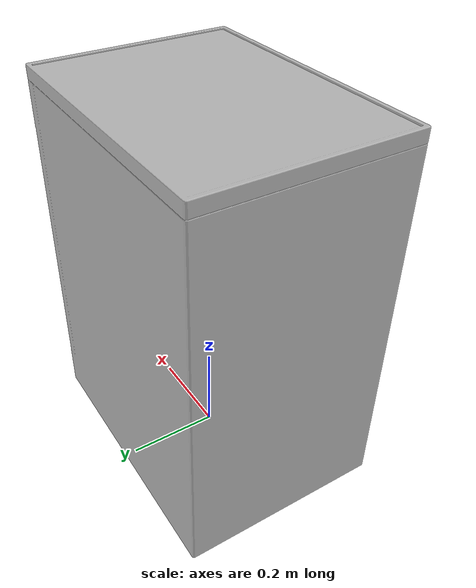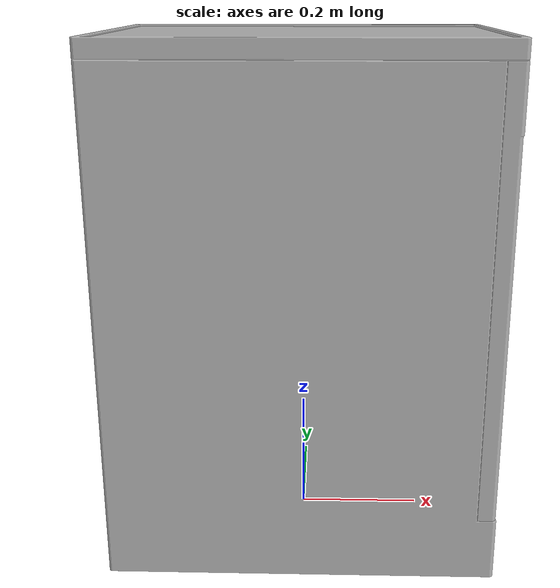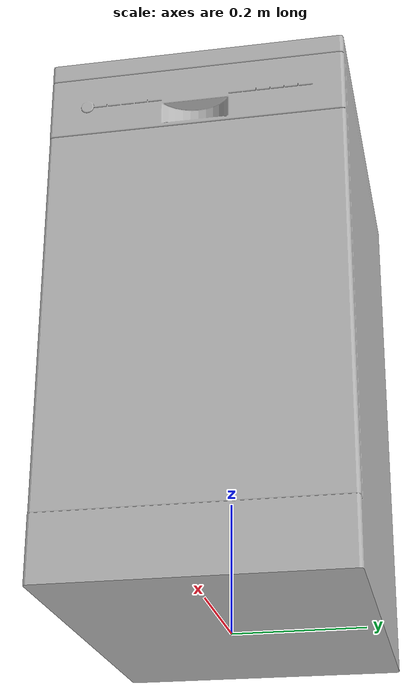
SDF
<?xml version='1.0'?>
<sdf version='1.4'>
  <model name='219'>
    <pose>0 0 0 0 0 0</pose>
    <static>true</static>
    <link name='link'>
      <collision name='collision'>
        <pose>0 0 0 0 0 0</pose>
        <geometry>
          <box>
            <size>0.6115 0.45 2</size>
          </box>
        </geometry>
      </collision>
      <visual name='visual'>
        <pose>0 0 0 0 0 0</pose>
        <geometry>
          <mesh><uri>model://219/219.dae</uri></mesh>
        </geometry>
      </visual>
    </link>
  </model>
</sdf>
